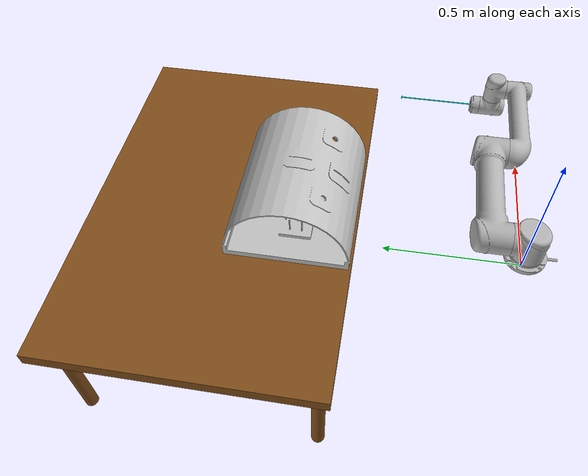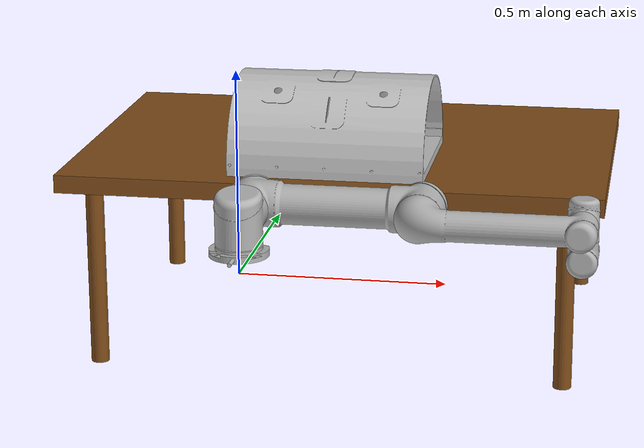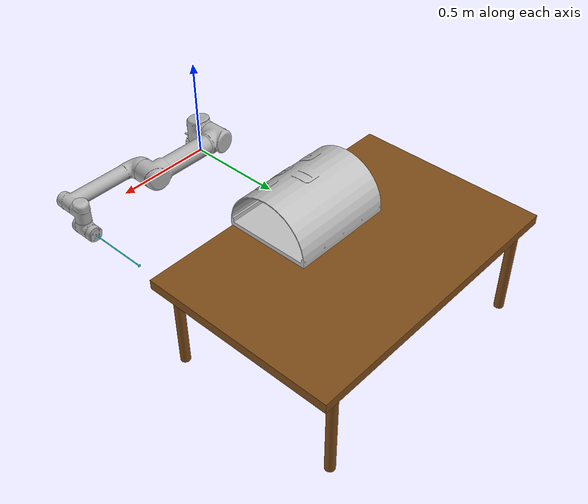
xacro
<?xml version="1.0" encoding="utf-8"?>
<robot name="ur5_with_table">
    <gazebo>
        <plugin name="gazebo_ros_control" filename="libgazebo_ros_control.so">
            <robotNamespace>/ur5_with_table</robotNamespace>
        </plugin>
    </gazebo>
    <link name="base_link">
        <visual>
            <origin rpy="0 0 3.141592653589793" xyz="0 0 0" />
            <geometry>
                <mesh filename="package://ur_description/meshes/ur5/visual/base.dae" />
            </geometry>
            <material name="LightGrey">
                <color rgba="0.7 0.7 0.7 1.0" />
            </material>
        </visual>
        <collision>
            <origin rpy="0 0 3.141592653589793" xyz="0 0 0" />
            <geometry>
                <mesh filename="package://ur_description/meshes/ur5/collision/base.stl" />
            </geometry>
        </collision>
        <inertial>
            <mass value="4.0" />
            <origin rpy="0 0 0" xyz="0 0 0" />
            <inertia ixx="0.00443333156" ixy="0.0" ixz="0.0" iyy="0.00443333156" iyz="0.0" izz="0.0072" />
        </inertial>
    </link>
    <joint name="shoulder_pan_joint" type="revolute">
        <parent link="base_link" />
        <child link="shoulder_link" />
        <origin rpy="0.0 0.0 0.0" xyz="0.0 0.0 0.089159" />
        <axis xyz="0 0 1" />
        <limit effort="150.0" lower="-3.14159265" upper="3.14159265" velocity="3.15" />
        <dynamics damping="0.0" friction="0.0" />
    </joint>
    <link name="shoulder_link">
        <visual>
            <origin rpy="0 0 3.141592653589793" xyz="0 0 0" />
            <geometry>
                <mesh filename="package://ur_description/meshes/ur5/visual/shoulder.dae" />
            </geometry>
            <material name="LightGrey">
                <color rgba="0.7 0.7 0.7 1.0" />
            </material>
        </visual>
        <collision>
            <origin rpy="0 0 3.141592653589793" xyz="0 0 0" />
            <geometry>
                <mesh filename="package://ur_description/meshes/ur5/collision/shoulder.stl" />
            </geometry>
        </collision>
        <inertial>
            <mass value="3.7" />
            <origin rpy="0 0 0" xyz="0 0 0" />
            <inertia ixx="0.014972352344389999" ixy="0.0" ixz="0.0" iyy="0.014972352344389999"
                iyz="0.0" izz="0.01040625" />
        </inertial>
    </link>
    <joint name="shoulder_lift_joint" type="revolute">
        <parent link="shoulder_link" />
        <child link="upper_arm_link" />
        <origin rpy="1.570796327 0 0" xyz="0 0 0" />
        <axis xyz="0 0 1" />
        <limit effort="150.0" lower="-6.283185307179586" upper="6.283185307179586"
            velocity="3.141592653589793" />
        <dynamics damping="0" friction="0" />
    </joint>
    <link name="upper_arm_link">
        <visual>
            <origin rpy="1.5707963267948966 0 -1.5707963267948966" xyz="0 0 0.13585" />
            <geometry>
                <mesh filename="package://ur_description/meshes/ur5/visual/upperarm.dae" />
            </geometry>
            <material name="LightGrey">
                <color rgba="0.7 0.7 0.7 1.0" />
            </material>
        </visual>
        <collision>
            <origin rpy="1.5707963267948966 0 -1.5707963267948966" xyz="0 0 0.13585" />
            <geometry>
                <mesh filename="package://ur_description/meshes/ur5/collision/upperarm.stl" />
            </geometry>
        </collision>
        <inertial>
            <mass value="8.393" />
            <origin rpy="0 1.5707963267948966 0" xyz="-0.2125 0.0 0.136" />
            <inertia ixx="0.1338857818623325" ixy="0.0" ixz="0.0" iyy="0.1338857818623325" iyz="0.0"
                izz="0.0151074" />
        </inertial>
    </link>
    <joint name="elbow_joint" type="revolute">
        <parent link="upper_arm_link" />
        <child link="forearm_link" />
        <origin rpy="0 0 0" xyz="-0.425 0 0" />
        <axis xyz="0 0 1" />
        <limit effort="150.0" lower="-3.141592653589793" upper="3.141592653589793"
            velocity="3.141592653589793" />
        <dynamics damping="0" friction="0" />
    </joint>
    <link name="forearm_link">
        <visual>
            <origin rpy="1.5707963267948966 0 -1.5707963267948966" xyz="0 0 0.0165" />
            <geometry>
                <mesh filename="package://ur_description/meshes/ur5/visual/forearm.dae" />
            </geometry>
            <material name="LightGrey">
                <color rgba="0.7 0.7 0.7 1.0" />
            </material>
        </visual>
        <collision>
            <origin rpy="1.5707963267948966 0 -1.5707963267948966" xyz="0 0 0.0165" />
            <geometry>
                <mesh filename="package://ur_description/meshes/ur5/collision/forearm.stl" />
            </geometry>
        </collision>
        <inertial>
            <mass value="2.275" />
            <origin rpy="0 1.5707963267948966 0" xyz="-0.196125 0.0 0.0165" />
            <inertia ixx="0.03121679102890359" ixy="0.0" ixz="0.0" iyy="0.03121679102890359"
                iyz="0.0" izz="0.004095" />
        </inertial>
    </link>
    <joint name="wrist_1_joint" type="revolute">
        <parent link="forearm_link" />
        <child link="wrist_1_link" />
        <origin rpy="0 0 0" xyz="-0.39225 0 0.10915" />
        <axis xyz="0 0 1" />
        <limit effort="28.0" lower="-6.283185307179586" upper="6.283185307179586"
            velocity="3.141592653589793" />
        <dynamics damping="0" friction="0" />
    </joint>
    <link name="wrist_1_link">
        <visual>
            <!-- TODO: Move this to a parameter -->
            <origin rpy="1.5707963267948966 0 0" xyz="0 0 -0.093" />
            <geometry>
                <mesh filename="package://ur_description/meshes/ur5/visual/wrist1.dae" />
            </geometry>
            <material name="LightGrey">
                <color rgba="0.7 0.7 0.7 1.0" />
            </material>
        </visual>
        <collision>
            <origin rpy="1.5707963267948966 0 0" xyz="0 0 -0.093" />
            <geometry>
                <mesh filename="package://ur_description/meshes/ur5/collision/wrist1.stl" />
            </geometry>
        </collision>
        <inertial>
            <mass value="1.219" />
            <origin rpy="0 0 0" xyz="0 0 0" />
            <inertia ixx="0.0020138887777775" ixy="0.0" ixz="0.0" iyy="0.0020138887777775" iyz="0.0"
                izz="0.0021942" />
        </inertial>
    </link>
    <joint name="wrist_2_joint" type="revolute">
        <parent link="wrist_1_link" />
        <child link="wrist_2_link" />
        <origin rpy="1.570796327 0 0" xyz="0 -0.09465 -1.941303950897609e-11" />
        <axis xyz="0 0 1" />
        <limit effort="28.0" lower="-6.283185307179586" upper="6.283185307179586"
            velocity="3.141592653589793" />
        <dynamics damping="0" friction="0" />
    </joint>
    <link name="wrist_2_link">
        <visual>
            <origin rpy="0 0 0" xyz="0 0 -0.095" />
            <geometry>
                <mesh filename="package://ur_description/meshes/ur5/visual/wrist2.dae" />
            </geometry>
            <material name="LightGrey">
                <color rgba="0.7 0.7 0.7 1.0" />
            </material>
        </visual>
        <collision>
            <origin rpy="0 0 0" xyz="0 0 -0.095" />
            <geometry>
                <mesh filename="package://ur_description/meshes/ur5/collision/wrist2.stl" />
            </geometry>
        </collision>
        <inertial>
            <mass value="1.219" />
            <origin rpy="0 0 0" xyz="0 0 0" />
            <inertia ixx="0.0018310388509175" ixy="0.0" ixz="0.0" iyy="0.0018310388509175" iyz="0.0"
                izz="0.0021942" />
        </inertial>
    </link>
    <joint name="wrist_3_joint" type="revolute">
        <parent link="wrist_2_link" />
        <child link="wrist_3_link" />
        <origin rpy="1.570796326589793 3.141592653589793 3.141592653589793"
            xyz="0 0.0823 -1.688001216681175e-11" />
        <axis xyz="0 0 1" />
        <limit effort="28.0" lower="-6.283185307179586" upper="6.283185307179586"
            velocity="3.141592653589793" />
        <dynamics damping="0" friction="0" />
    </joint>

    <link name="wrist_3_link">
        <visual>
            <origin rpy="1.5707963267948966 0 0" xyz="0 0 -0.0818" />
            <geometry>
                <mesh filename="package://ur_description/meshes/ur5/visual/wrist3.dae" />
            </geometry>
            <material name="LightGrey">
                <color rgba="0.7 0.7 0.7 1.0" />
            </material>
        </visual>
        <collision>
            <origin rpy="1.5707963267948966 0 0" xyz="0 0 -0.0818" />
            <geometry>
                <mesh filename="package://ur_description/meshes/ur5/collision/wrist3.stl" />
            </geometry>
        </collision>
        <inertial>
            <mass value="0.1879" />
            <origin rpy="0 0 0" xyz="0.0 0.0 -0.01525" />
            <inertia ixx="8.062472608343e-05" ixy="0.0" ixz="0.0" iyy="8.062472608343e-05" iyz="0.0"
                izz="0.0001321171875" />
        </inertial>
    </link>

    <joint name="ee_fixed_joint" type="fixed">
        <parent link="wrist_3_link" />
        <child link="ee_link" />
        <origin rpy="0 3.14 0" xyz="0.0 0 0.0" />
        <axis xyz="0 0 1" />
        <limit effort="0" lower="0" upper="0" velocity="0" />
        <dynamics damping="0.0" friction="0.0" />
    </joint>

    <link name="ee_link">
        <visual>
            <geometry>
                <cylinder radius="0.0025" length="0.3" />
            </geometry>
            <material name="Cyan">
                <color rgba="0.0 1.0 1.0 1.0" />
            </material>
            <origin rpy="0 0 0" xyz="0.0 0.0 -0.15" />
        </visual>
        <collision>
            <geometry>
                <cylinder radius="0.0025" length="0.3" />
            </geometry>
            <origin rpy="0 0 0" xyz="0.0 0.0 -0.15" />
        </collision>
        <inertial>
            <mass value="0.1" />
            <origin xyz="0 0 0" rpy="0 0 0" />
            <inertia ixx="0.03" iyy="0.03" izz="0.03" ixy="0.0" ixz="0.0" iyz="0.0" />
        </inertial>
    </link>

    <joint name="camera_joint" type="fixed">
        <parent link="ee_link" />
        <child link="camera_link" />
        <origin xyz="0 0 -0.3" rpy="0 1.570796325 0" />
    </joint>
    <link name="camera_link">
        <gazebo reference="camera_link" />
        <visual>
            <geometry>
                <box size="0.004 0.01 0.01" />
            </geometry>
            <material name="Cyan">
                <color rgba="0.0 1.0 1.0 1.0" />
            </material>
        </visual>
    </link>
    <joint name="camera_optical_joint" type="fixed">
        <parent link="camera_link" />
        <child link="camera_link_optical" />
        <origin xyz="0 0 0.3" rpy="-1.570796325 0 -1.570796325" />
    </joint>
    <link name="camera_link_optical" />
    <gazebo reference="camera_link">
        <material>Gazebo/Red</material>
        <sensor name="camera" type="camera">
            <pose>0 0 0 0 0 0</pose>
            <visualize>true</visualize>
            <update_rate>10</update_rate>
            <camera>
                <horizontal_fov>1.089</horizontal_fov>
                <image>
                    <format>R8G8B8</format>
                    <width>640</width>
                    <height>480</height>
                </image>
                <clip>
                    <near>0.05</near>
                    <far>8.0</far>
                </clip>
            </camera>
            <plugin name="camera_controller" filename="libgazebo_ros_camera.so">
                <frame_name>camera_link_optical</frame_name>
            </plugin>
        </sensor>
    </gazebo>
    <transmission name="shoulder_pan_trans">
        <type>transmission_interface/SimpleTransmission</type>
        <joint name="shoulder_pan_joint">
            <hardwareInterface>hardware_interface/EffortJointInterface</hardwareInterface>
        </joint>
        <actuator name="shoulder_pan_motor">
            <mechanicalReduction>1</mechanicalReduction>
            <hardwareInterface>hardware_interface/EffortJointInterface</hardwareInterface>
        </actuator>
    </transmission>
    <transmission name="shoulder_lift_trans">
        <type>transmission_interface/SimpleTransmission</type>
        <joint name="shoulder_lift_joint">
            <hardwareInterface>hardware_interface/EffortJointInterface</hardwareInterface>
        </joint>
        <actuator name="shoulder_lift_motor">
            <mechanicalReduction>1</mechanicalReduction>
            <hardwareInterface>hardware_interface/EffortJointInterface</hardwareInterface>
        </actuator>
    </transmission>
    <transmission name="elbow_trans">
        <type>transmission_interface/SimpleTransmission</type>
        <joint name="elbow_joint">
            <hardwareInterface>hardware_interface/EffortJointInterface</hardwareInterface>
        </joint>
        <actuator name="elbow_motor">
            <mechanicalReduction>1</mechanicalReduction>
            <hardwareInterface>hardware_interface/EffortJointInterface</hardwareInterface>
        </actuator>
    </transmission>
    <transmission name="wrist_1_trans">
        <type>transmission_interface/SimpleTransmission</type>
        <joint name="wrist_1_joint">
            <hardwareInterface>hardware_interface/EffortJointInterface</hardwareInterface>
        </joint>
        <actuator name="wrist_1_motor">
            <mechanicalReduction>1</mechanicalReduction>
            <hardwareInterface>hardware_interface/EffortJointInterface</hardwareInterface>
        </actuator>
    </transmission>
    <transmission name="wrist_2_trans">
        <type>transmission_interface/SimpleTransmission</type>
        <joint name="wrist_2_joint">
            <hardwareInterface>hardware_interface/EffortJointInterface</hardwareInterface>
        </joint>
        <actuator name="wrist_2_motor">
            <mechanicalReduction>1</mechanicalReduction>
            <hardwareInterface>hardware_interface/EffortJointInterface</hardwareInterface>
        </actuator>
    </transmission>
    <transmission name="wrist_3_trans">
        <type>transmission_interface/SimpleTransmission</type>
        <joint name="wrist_3_joint">
            <hardwareInterface>hardware_interface/EffortJointInterface</hardwareInterface>
        </joint>
        <actuator name="wrist_3_motor">
            <mechanicalReduction>1</mechanicalReduction>
            <hardwareInterface>hardware_interface/EffortJointInterface</hardwareInterface>
        </actuator>
    </transmission>
    <!-- define the ur5's position and orientation in the world coordinate system -->
    <link name="world" />
    <joint name="world_robot_joint" type="fixed">
        <parent link="world" />
        <child link="base_link" />
        <!-- TODO: check base_link name of robot -->
        <origin rpy="0.0 0.0 3.141592653589793" xyz="0.0 0.0 0.05" />
    </joint>
    <joint name="world_table_joint" type="fixed">
        <parent link="world" />
        <child link="table_top" />
        <!-- TODO: check base_link name of robot -->
        <origin rpy="0.0 0.0 0.0" xyz="0.1 1.1 0.025" />
    </joint>
    <joint name="world_stomach_joint" type="fixed">
        <parent link="table_top" />
        <child link="stomach_link" />
        <!-- TODO: check base_link name of robot -->
        <origin rpy="0.0 0.0 -1.570796325" xyz="0.0 -0.27 0.065" />
    </joint>
    <link name="stomach_link">
        <inertial>
            <origin xyz="-0.00116958816636348 0.00194191798200065 0.0163617422794715" rpy="0 0 0" />
            <mass value="1.67854287309931" />
            <inertia ixx="0.0127919503513295" ixy="-0.000351502262622538" ixz="0.000129139947884529"
                iyy="0.0101141052014532" iyz="-2.2641300307581E-05" izz="0.0214244565663922" />
        </inertial>
        <visual>
            <origin xyz="0 0 0" rpy="0 0 0" />
            <geometry>
                <mesh filename="package://round_trainer_edited/meshes/base_link.STL"
                    scale="1.75 1.75 1.75" />
            </geometry>
            <material name="">
                <color rgba="0.752941176470588 0.752941176470588 0.752941176470588 1" />
            </material>
        </visual>
        <collision>
            <origin xyz="0 0 0" rpy="0 0 0" />
            <geometry>
                <mesh filename="package://round_trainer_edited/meshes/base_link.STL"
                    scale="1.75 1.75 1.75" />
            </geometry>
        </collision>
    </link>
    <gazebo reference="stomach_link">
        <material>Gazebo/Orange</material>
    </gazebo>
    <!-- Table Top -->
    <link name="table_top">
        <visual>
            <geometry>
                <box size="1.5 1.0 0.05" />
                <!-- Length: 1.5m, Width: 1 m, Thickness: 0.05m -->
            </geometry>
            <material name="Brown">
                <color rgba="0.5 0.3 0.1 1.0" />
                <!-- Brown color -->
            </material>
        </visual>
        <collision>
            <geometry>
                <box size="1.5 1.0 0.05" />
            </geometry>
        </collision>
        <inertial>
            <mass value="1.0" />
            <!-- Table mass -->
            <inertia ixx="0.01" iyy="0.01" izz="0.01" ixy="0.0" ixz="0.0" iyz="0.0" />
            <origin xyz="0 0 0" rpy="0 0 0" />
        </inertial>
    </link>
    <gazebo reference="table_top">
        <material>Gazebo/Wood</material>
    </gazebo>
    <!-- Table Legs -->
    <link name="table_leg_1">
        <visual>
            <geometry>
                <cylinder length="0.5" radius="0.025" />
                <!-- Height: 0.5m, Radius: 0.025m -->
            </geometry>
            <material name="Brown">
                <color rgba="0.5 0.3 0.1 1.0" />
            </material>
        </visual>
        <collision>
            <geometry>
                <cylinder length="0.5" radius="0.025" />
            </geometry>
        </collision>
        <inertial>
            <mass value="0.1" />
            <inertia ixx="0.001" iyy="0.001" izz="0.001" ixy="0.0" ixz="0.0" iyz="0.0" />
            <origin xyz="0 0 0" rpy="0 0 0" />
        </inertial>
    </link>
    <link name="table_leg_2">
        <visual>
            <geometry>
                <cylinder length="0.5" radius="0.025" />
            </geometry>
            <material name="Brown">
                <color rgba="0.5 0.3 0.1 1.0" />
            </material>
        </visual>
        <collision>
            <geometry>
                <cylinder length="0.5" radius="0.025" />
            </geometry>
        </collision>
        <inertial>
            <mass value="0.1" />
            <inertia ixx="0.001" iyy="0.001" izz="0.001" ixy="0.0" ixz="0.0" iyz="0.0" />
            <origin xyz="0 0 0" rpy="0 0 0" />
        </inertial>
    </link>
    <link name="table_leg_3">
        <visual>
            <geometry>
                <cylinder length="0.5" radius="0.025" />
            </geometry>
            <material name="Brown">
                <color rgba="0.5 0.3 0.1 1.0" />
            </material>
        </visual>
        <collision>
            <geometry>
                <cylinder length="0.5" radius="0.025" />
            </geometry>
        </collision>
        <inertial>
            <mass value="0.1" />
            <inertia ixx="0.001" iyy="0.001" izz="0.001" ixy="0.0" ixz="0.0" iyz="0.0" />
            <origin xyz="0 0 0" rpy="0 0 0" />
        </inertial>
    </link>
    <link name="table_leg_4">
        <visual>
            <geometry>
                <cylinder length="0.5" radius="0.025" />
            </geometry>
            <material name="Brown">
                <color rgba="0.5 0.3 0.1 1.0" />
            </material>
        </visual>
        <collision>
            <geometry>
                <cylinder length="0.5" radius="0.025" />
            </geometry>
        </collision>
        <inertial>
            <mass value="0.1" />
            <inertia ixx="0.001" iyy="0.001" izz="0.001" ixy="0.0" ixz="0.0" iyz="0.0" />
            <origin xyz="0 0 0" rpy="0 0 0" />
        </inertial>
    </link>
    <!-- Joints to connect legs to the table top -->
    <joint name="joint_leg_1" type="fixed">
        <parent link="table_top" />
        <child link="table_leg_1" />
        <origin xyz="-0.65 -0.45 -0.275" rpy="0 0 0" />
    </joint>
    <joint name="joint_leg_2" type="fixed">
        <parent link="table_top" />
        <child link="table_leg_2" />
        <origin xyz="0.65 -0.45 -0.275" rpy="0 0 0" />
    </joint>
    <joint name="joint_leg_3" type="fixed">
        <parent link="table_top" />
        <child link="table_leg_3" />
        <origin xyz="-0.65 0.45 -0.275" rpy="0 0 0" />
    </joint>
    <joint name="joint_leg_4" type="fixed">
        <parent link="table_top" />
        <child link="table_leg_4" />
        <origin xyz="0.65 0.45 -0.275" rpy="0 0 0" />
    </joint>
</robot>
